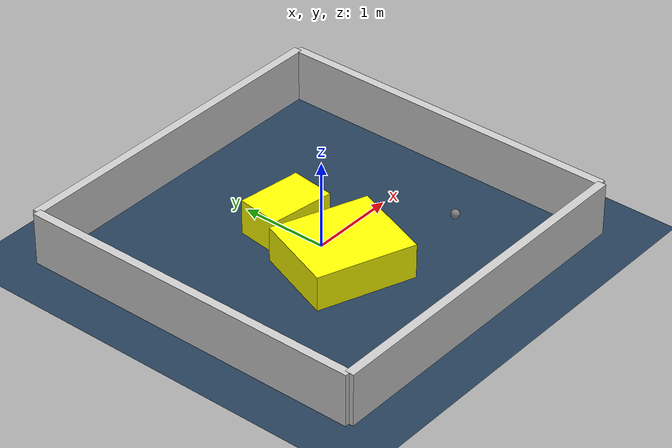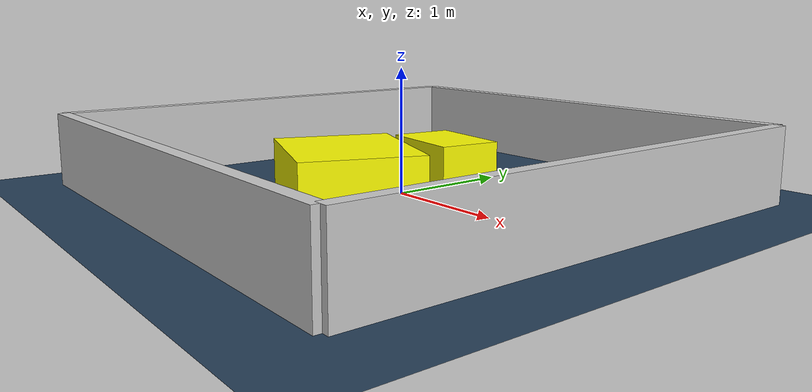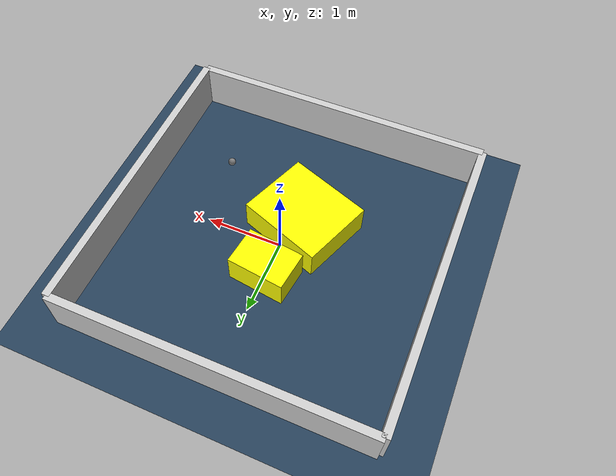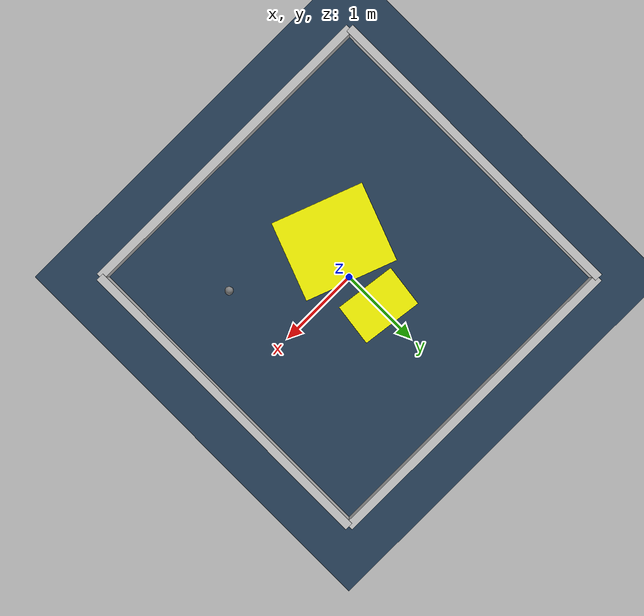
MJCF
<?xml version="1.0" ?>
<mujoco model="generated_environment">
  <option timestep="0.01" integrator="RK4" cone="elliptic"/>
  <default>
    <geom density="1"/>
  </default>
  <asset>
    <texture builtin="gradient" height="3072" rgb1="0.3 0.5 0.7" rgb2="0 0 0" type="skybox" width="512"/>
    <texture builtin="checker" height="300" mark="edge" markrgb="0.8 0.8 0.8" name="groundplane" rgb1="0.2 0.3 0.4" rgb2="0.1 0.2 0.3" type="2d" width="300"/>
    <material name="groundplane" reflectance="0.2" texrepeat="5 5" texture="groundplane" texuniform="true"/>
    <material name="robot" rgba="0.0 1.0 0.0 1"/>
  </asset>
  <worldbody>
    <light dir="0 0 -1" directional="true" pos="0 0 1.5"/>
    <geom condim="4" friction="1.0 0.005 0.001" material="groundplane" name="floor" size="0 0 0.05" type="plane"/>
    <body name="walls">
      <geom name="wall_1" condim="4" pos="-2.0 0.0 0.3" rgba="0.800000011920929 0.800000011920929 0.800000011920929 1.0" size="0.05 2.0 0.3" type="box"/>
      <geom name="wall_2" condim="4" pos="2.0 0.0 0.3" rgba="0.800000011920929 0.800000011920929 0.800000011920929 1.0" size="0.05 2.0 0.3" type="box"/>
      <geom name="wall_3" condim="4" pos="0.0 -2.0 0.3" rgba="0.800000011920929 0.800000011920929 0.800000011920929 1.0" size="2.0 0.05 0.3" type="box"/>
      <geom name="wall_4" condim="4" pos="0.0 2.0 0.3" rgba="0.800000011920929 0.800000011920929 0.800000011920929 1.0" size="2.0 0.05 0.3" type="box"/>
    </body>
    <body name="robot">
      <joint name="joint_x" type="slide" pos="0 0 0" axis="1 0 0"/>
      <joint name="joint_y" type="slide" pos="0 0 0" axis="0 1 0"/>
      <geom name="robot" type="sphere" pos="1.0829874983196506 -0.8623355448823595 0.2" size="0.05" mass="5." friction="1.0 0.005 0.0001" condim="4"/>
      <site name="sensor_ball"/>
    </body>
    <body name="obstacle_1_movable">
      <geom name="obstacle_1_movable" condim="4" pos="-0.16288465533923557 -0.4085628071578358 0.2" euler="0 0 339.35244100771047" friction="1.0 0.005 0.001" rgba="1 1 0 1" size="0.5657845742912198 0.48506544709836175 0.2" type="box" mass="0.1"/>
      <joint type="free"/>
    </body>
    <body name="obstacle_2_movable">
      <geom name="obstacle_2_movable" condim="4" pos="-0.008431969411747842 0.4631130897540814 0.2" euler="0 0 352.5538934453701" friction="1.0 0.005 0.001" rgba="1 1 0 1" size="0.3715211102887196 0.2565628799270661 0.2" type="box" mass="0.1"/>
      <joint type="free"/>
    </body>
  </worldbody>
  <actuator>
    <motor name="actuator_x" joint="joint_x" gear="1" ctrlrange="-1 1"/>
    <motor name="actuator_y" joint="joint_y" gear="1" ctrlrange="-1 1"/>
  </actuator>
</mujoco>
